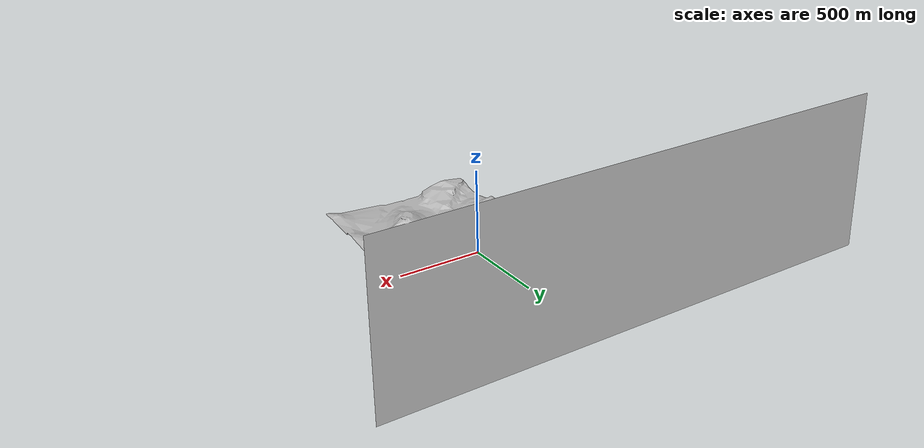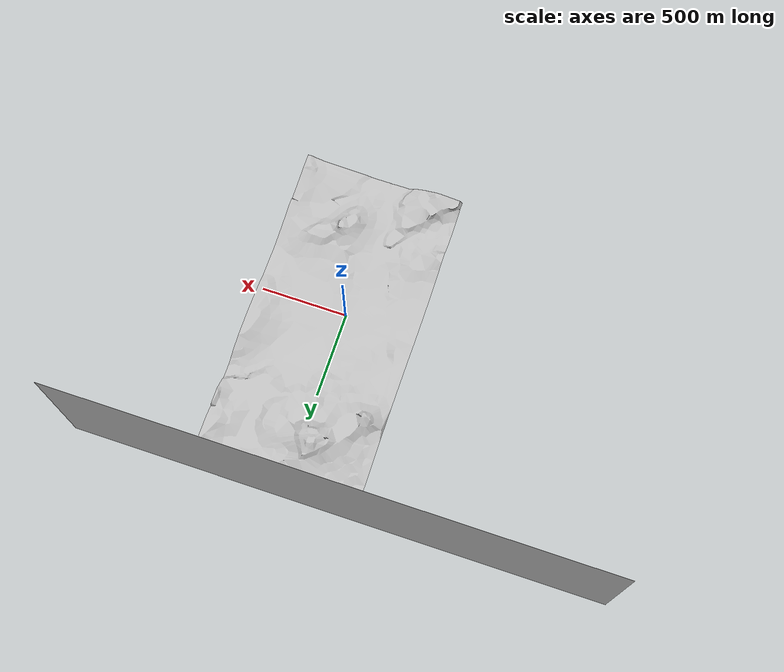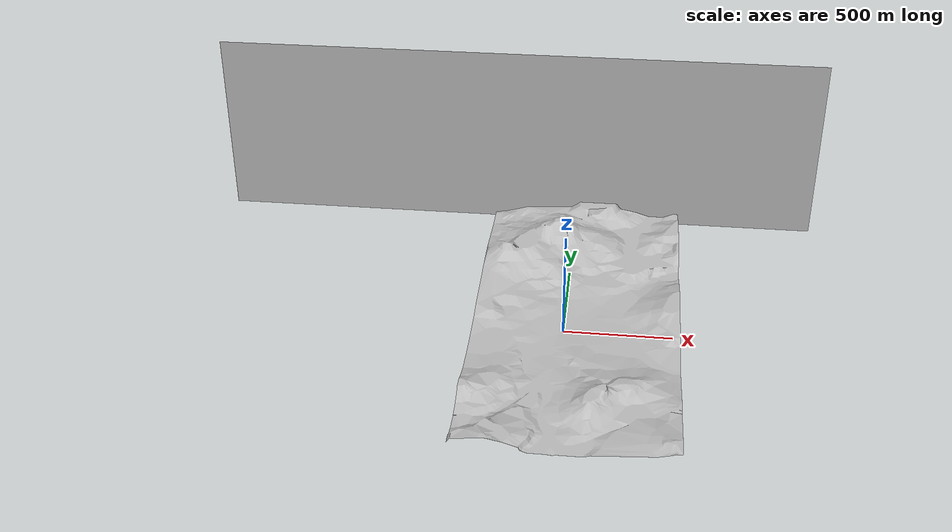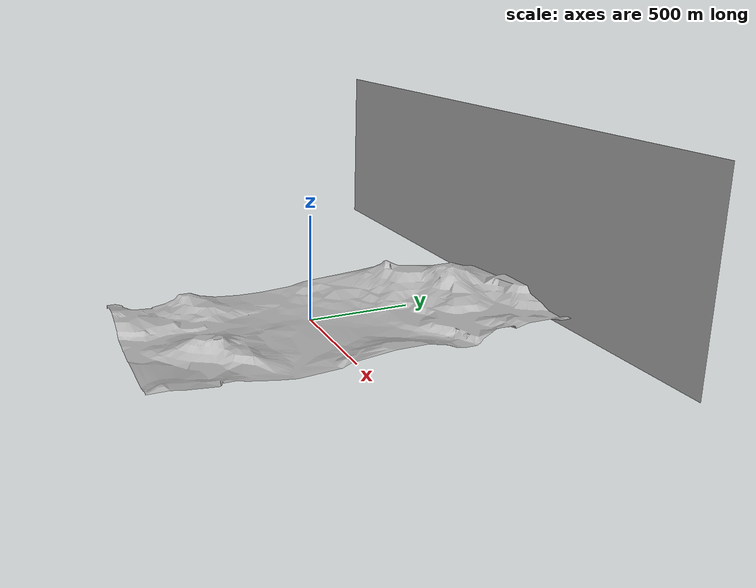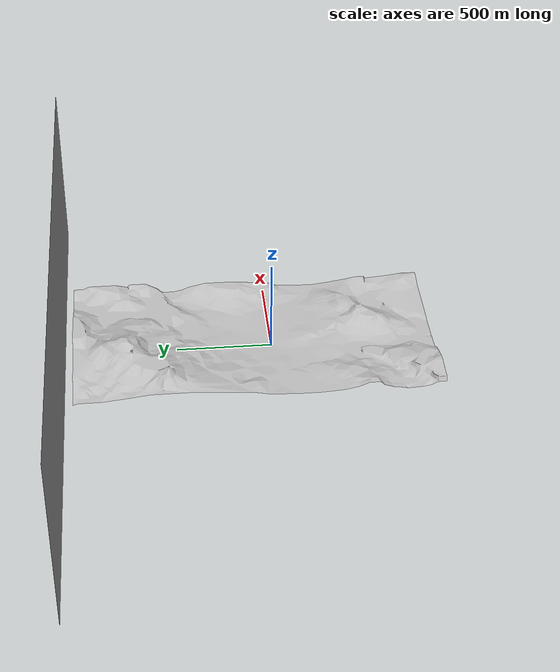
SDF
<?xml version="1.0" ?>
<sdf version="1.4">
  <world name="default">
    <physics type="ode">
      <gravity>0 0 -9.81</gravity>
      <ode>
        <solver>
          <type>quick</type>
          <iters>20</iters>
          <sor>1.0</sor>
        </solver>
        <constraints>
          <cfm>0.0</cfm>
          <erp>0.2</erp>
          <contact_max_correcting_vel>100.0</contact_max_correcting_vel>
          <contact_surface_layer>0.0</contact_surface_layer>
        </constraints>
      </ode>
      <real_time_update_rate>1000</real_time_update_rate>
      <max_step_size>0.001</max_step_size>
    </physics>
    <light type="directional" name="light1">
      <cast_shadows>true</cast_shadows>
      <pose>-6 0 6 0 0.6 0</pose>
      <diffuse>0.0 0.0 0.0 1.0</diffuse>
      <specular>0.1 0.1 0.1 1</specular>
      <attenuation>
        <range>30</range>
        <constant>0.9</constant>
        <linear>0.01</linear>
        <quadratic>0.001</quadratic>
      </attenuation>
      <direction>0.2 0.0 -1.0</direction>
    </light>
    <!-- A ground plane -->
    <include>
      <uri>model://sun</uri>
    </include>
    <!-- Dessert -->
    <include>
      <uri>model://desert</uri>
      <pose>25.0 -30 -34 0 0 0.0</pose>
    </include>

    <gui fullscreen="0">
      <camera name="user_camera">
        <pose>1.152670 -0.041479 3.496780 0.000000 1.123640 3.132190</pose>
        <view_controller>orbit</view_controller>
      </camera>
    </gui>
  </world>
</sdf>

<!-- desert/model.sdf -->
<sdf version="1.4">
  <model name="desert">
    <static>1</static>
    <link name="link">
      <collision name="colision1">
        <pose>0 0 0 0 0 0</pose>
        <geometry>
          <mesh>
            <uri>model://desert/meshes/Mountains.dae</uri>
            <scale>1 1 1</scale>
          </mesh>
        </geometry>
        <surface>
          <bounce />
          <friction>
            <ode />
          </friction>
          <contact>
            <ode />
          </contact>
        </surface>
      </collision>
      <visual name="visual1">
        <pose>0 0 0 0 0 0</pose>
        <geometry>
          <mesh>
            <uri>model://desert/meshes/Mountains.dae</uri>
            <scale>1 1 1</scale>
          </mesh>
        </geometry>
      </visual>
    </link>
  </model>
</sdf>
